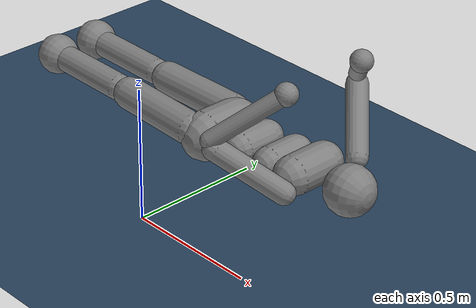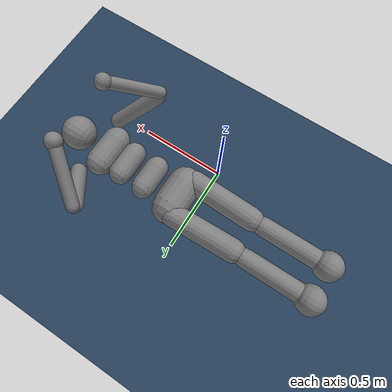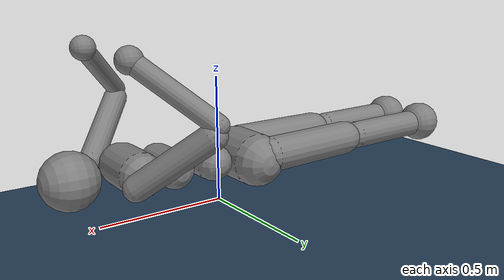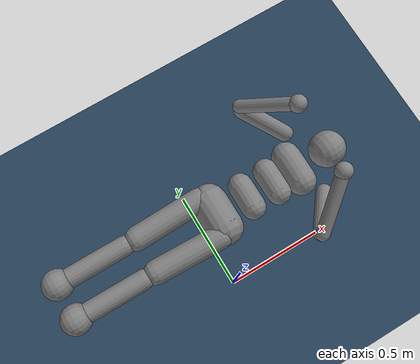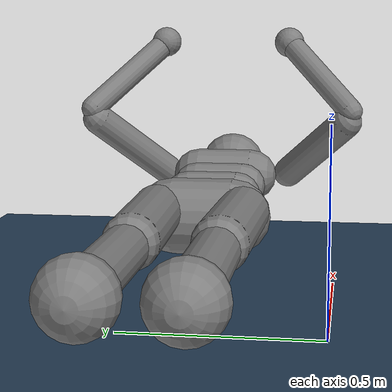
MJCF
<!--Link  MuJoCo modeling: http://www.mujoco.org/book/modeling.html-->

<mujoco model="ur5gripper">
    <compiler angle="radian"
              inertiafromgeom="true"
              texturedir="textures/"
              meshdir="mesh/visual/"/>
    <option timestep="1e-2"
            iterations="100"
            tolerance="1e-10"
            impratio="20"/>
    <option solver="Newton"/>
    <size njmax="600" nconmax="150" nstack="300000"/>
    <option gravity="0 0 0"/>
    <option cone="elliptic"/>
    <option noslip_iterations="5"/>

    <default>
        <site rgba="0.8 0.6 0.7 0.3" type="ellipsoid" group="3"/>
        <geom contype='1' conaffinity='1' condim='4'  margin="1e-3" solref=".01 1" solimp=".99 .99 .01" />
        <joint armature="0.01" damping=".1"/>
        <default class="UR5">
            <joint damping='65'/>
        </default>
        <default class="UR5e">
            <joint damping='45'/>
        </default>
        <default class="GRIPPER">
            <joint damping='5'/>
        </default>
    </default>

    <visual>
        <map fogstart="3" fogend="5" znear="0.05"/>
        <quality shadowsize="2048"/>
        <scale framelength="0.1"
               framewidth="0.005"
               contactwidth="0.1"
               contactheight="0.005"
               forcewidth="0.01"
               />
    </visual>

    <asset>

        <mesh file="base.stl" name="base" />
        <mesh file="shoulder.stl" name="shoulder" />
        <mesh file="upperarm.stl" name="upperarm" />
        <mesh file="forearm.stl" name="forearm" />
        <mesh file="wrist1.stl" name="wrist1" />
        <mesh file="wrist2.stl" name="wrist2" />
        <mesh file="wrist3.stl" name="wrist3" />
        <mesh file="palm.STL" name="gripperpalm" />
        <mesh file="link_0.STL" name="link_0" />
        <mesh file="link_1.STL" name="link_1" />
        <mesh file="link_2.STL" name="link_2" />
        <mesh file="link_3.STL" name="link_3" />
        <mesh file="kinova_robotiq_coupler.stl" />
        <mesh file="robotiq_85_base_link.stl" />
        <mesh file="robotiq_85_finger_link.stl" />
        <mesh file="robotiq_85_finger_tip_link.stl" />
        <mesh file="robotiq_85_inner_knuckle_link.stl" />
        <mesh file="robotiq_85_knuckle_link.stl" />

        <mesh file="wrist3_visual.stl" name="wrist3_visual" />
        <mesh file="robotiq_gripper_coupling.stl" name="robotiq_gripper_coupling" scale="0.001 0.001 0.001" />
        <mesh file="gripper_base_visual.stl" name="gripper_base_visual" scale="0.001 0.001 0.001" />
        <mesh file="robotiq_arg2f_85_base_link.stl" name="robotiq_arg2f_85_base_link" />
        <mesh file="outer_knuckle_visual.stl" name="outer_knuckle_visual" scale="0.001 0.001 0.001" />
        <mesh file="outer_finger_visual.stl" name="outer_finger_visual" scale="0.001 0.001 0.001" />
        <mesh file="inner_finger_visual.stl" name="inner_finger_visual" scale="0.001 0.001 0.001" />
        <mesh file="inner_knuckle_visual.stl" name="inner_knuckle_visual" scale="0.001 0.001 0.001" />

        <texture builtin="flat" height="32" name="ur5_tex" rgb1="0.45 0.45 0.45" type="2d" width="32" />
        <texture builtin="flat" height="32" name="gripper_tex" rgb1="0.45 0.45 0.45" rgb2="0 0 0" type="2d" width="32" />
        <texture builtin="flat" height="32" name="bench_tex" rgb1="0.7 0.7 0.7" type="2d" width="32" />
        <texture builtin="gradient" height="100" name="sky_tex" rgb1="1 1 1" rgb2="0.3 0.3 0.8" type="skybox" width="100" />
        <texture builtin="flat" height="1278" mark="cross" markrgb="1 1 1" name="texgeom" random="0.01" rgb1="0.8 0.6 0.4" rgb2="0.8 0.6 0.4" type="cube" width="127" />
        <texture builtin="checker" height="100" name="floor_tex" rgb1=".2 .3 .4" rgb2=".1 .2 .3" type="2d" width="100" />
        <texture file="wood2.png" name="wood" type="cube" />
        <texture file="metal2.png" name="metal" type="cube" />

        <material name="ur5_mat" reflectance="0.3" shininess="0.9" specular="0.75" texture="ur5_tex" />
        <material name="gripper_mat" reflectance="0.4" shininess="0.9" specular="0.75" texture="gripper_tex" />
        <material name="floor_mat" reflectance="0.5" shininess="0.8" specular="0.7" texrepeat="10 10" texture="floor_tex" />
        <material name="geom" texture="texgeom" texuniform="true" />
        <material name="bench_mat" reflectance="0.2" shininess="0.1" specular="0.5" texture="metal" />
        <material name="tablecube" rgba=".8 .8 .8 1" texture="wood" />

        <material emission="0.1" name="GriMat" reflectance="0" rgba="0.1 0.1 0.1 1" shininess="0.5" specular="0.9" />
    </asset>

    <worldbody>

        <geom material="floor_mat" name="floor" pos="0 0 0" size="2.5 2.5 0.1" type="plane" />

        <body name="torso" pos="0.5 0.3 0.3" euler="-1.5708 1.5708 -1.5708">
            <camera name="track" mode="trackcom" pos="0 -4 0" xyaxes="1 0 0 0 0 1"/>
            <geom fromto="0 -.07 0 0 .07 0" name="torso1" size="0.07" type="capsule"/>
            <geom name="head" pos="0 0 .19" size=".09" type="sphere" user="258"/>
            <geom fromto="-.01 -.06 -.12 -.01 .06 -.12" name="uwaist" size="0.06" type="capsule"/>
            <body name="lwaist" pos="-.01 0 -0.260" quat="1.000 0 -0.002 0">
                <geom fromto="0 -.06 0 0 .06 0" name="lwaist" size="0.06" type="capsule"/>
                <joint armature="0.02" axis="0 0 1" damping="5" name="abdomen_z" pos="0 0 0.065" range="-45 45" stiffness="20" type="hinge"/>
                <joint armature="0.02" axis="0 1 0" damping="5" name="abdomen_y" pos="0 0 0.065" range="-75 30" stiffness="10" type="hinge"/>
                <body name="pelvis" pos="0 0 -0.165" quat="1.000 0 -0.002 0">
                    <joint armature="0.02" axis="1 0 0" damping="5" name="abdomen_x" pos="0 0 0.1" range="-35 35" stiffness="10" type="hinge"/>
                    <geom fromto="-.02 -.07 0 -.02 .07 0" name="butt" size="0.09" type="capsule"/>
                    <body name="right_thigh" pos="0 -0.1 -0.04">
                        <joint armature="0.01" axis="1 0 0" damping="5" name="right_hip_x" pos="0 0 0" range="-25 5" stiffness="10" type="hinge"/>
                        <joint armature="0.01" axis="0 0 1" damping="5" name="right_hip_z" pos="0 0 0" range="-60 35" stiffness="10" type="hinge"/>
                        <joint armature="0.0080" axis="0 1 0" damping="5" name="right_hip_y" pos="0 0 0" range="-110 20" stiffness="20" type="hinge"/>
                        <geom fromto="0 0 0 0 0.01 -.34" name="right_thigh1" size="0.06" type="capsule"/>
                        <body name="right_shin" pos="0 0.01 -0.403">
                            <joint armature="0.0060" axis="0 -1 0" name="right_knee" pos="0 0 .02" range="-160 -2" type="hinge"/>
                            <geom fromto="0 0 0 0 0 -.3" name="right_shin1" size="0.049" type="capsule"/>
                            <body name="right_foot" pos="0 0 -0.45">
                                <geom name="right_foot" pos="0 0 0.1" size="0.075" type="sphere" user="0"/>
                            </body>
                        </body>
                    </body>
                    <body name="left_thigh" pos="0 0.1 -0.04">
                        <joint armature="0.01" axis="-1 0 0" damping="5" name="left_hip_x" pos="0 0 0" range="-25 5" stiffness="10" type="hinge"/>
                        <joint armature="0.01" axis="0 0 -1" damping="5" name="left_hip_z" pos="0 0 0" range="-60 35" stiffness="10" type="hinge"/>
                        <joint armature="0.01" axis="0 1 0" damping="5" name="left_hip_y" pos="0 0 0" range="-110 20" stiffness="20" type="hinge"/>
                        <geom fromto="0 0 0 0 -0.01 -.34" name="left_thigh1" size="0.06" type="capsule"/>
                        <body name="left_shin" pos="0 -0.01 -0.403">
                            <joint armature="0.0060" axis="0 -1 0" name="left_knee" pos="0 0 .02" range="-160 -2" stiffness="1" type="hinge"/>
                            <geom fromto="0 0 0 0 0 -.3" name="left_shin1" size="0.049" type="capsule"/>
                            <body name="left_foot" pos="0 0 -0.45">
                                <geom name="left_foot" type="sphere" size="0.075" pos="0 0 0.1" user="0" />
                            </body>
                        </body>
                    </body>
                </body>
            </body>
            <body name="right_upper_arm" pos="0 -0.17 0.06">
                <joint armature="0.0068" axis="2 1 1" name="right_shoulder1" pos="0 0 0" range="-85 60" stiffness="1" type="hinge"/>
                <joint armature="0.0051" axis="0 -1 1" name="right_shoulder2" pos="0 0 0" range="-85 60" stiffness="1" type="hinge"/>
                <geom fromto="0 0 0 .16 -.16 -.16" name="right_uarm1" size="0.04 0.16" type="capsule"/>
                <body name="right_lower_arm" pos=".18 -.18 -.18">
                    <!--joint armature="0.0028" axis="0 -1 1" name="right_elbow" pos="0 0 0" range="-90 50" stiffness="0" type="hinge"/-->
                    <joint armature="0.0028" axis="0 -1 1" name="right_elbow" pos="0 0 0" range="-90 20" stiffness="0" type="hinge"/>
                    <geom fromto="0.01 0.01 0.01 .17 .17 .17" name="right_larm" size="0.031" type="capsule"/>
                    <geom name="right_hand" pos=".18 .18 .18" size="0.04" type="sphere"/>
                    <camera pos="0 0 0"/>
                </body>
            </body>
            <body name="left_upper_arm" pos="0 0.17 0.06">
                <joint armature="0.0068" axis="2 -1 1" name="left_shoulder1" pos="0 0 0" range="-60 85" stiffness="1" type="hinge"/>
                <joint armature="0.0051" axis="0 1 1" name="left_shoulder2" pos="0 0 0" range="-60 85" stiffness="1" type="hinge"/>
                <geom fromto="0 0 0 .16 .16 -.16" name="left_uarm1" size="0.04 0.16" type="capsule"/>
                <body name="left_lower_arm" pos=".18 .18 -.18">
                    <!--joint armature="0.0028" axis="0 -1 -1" name="left_elbow" pos="0 0 0" range="-90 50" stiffness="0" type="hinge"/-->
                    <joint armature="0.0028" axis="0 -1 -1" name="left_elbow" pos="0 0 0" range="-90 20" stiffness="0" type="hinge"/>
                    <geom fromto="0.01 -0.01 0.01 .17 -.17 .17" name="left_larm" size="0.031" type="capsule"/>
                    <geom name="left_hand" pos=".18 -.18 .18" size="0.04" type="sphere"/>
                </body>
            </body>
        </body>

        <camera mode="fixed" name="eye_in_hand" pos="0.15 0.0 0.0" quat="0 0.707108 0.707108 0" fovy="45"/>
        <camera euler="-1.5708 0 0" mode="fixed" name="frontview" pos="0.81725 1.34 0.84" />
    </worldbody>

    <tendon>
        <fixed name="left_hipknee">
            <joint coef="-1" joint="left_hip_y"/>
            <joint coef="1" joint="left_knee"/>
        </fixed>
        <fixed name="right_hipknee">
            <joint coef="-1" joint="right_hip_y"/>
            <joint coef="1" joint="right_knee"/>
        </fixed>
    </tendon>

    <actuator>
        <motor gear="100" joint="abdomen_y" name="abdomen_y"/>
        <motor gear="100" joint="abdomen_z" name="abdomen_z"/>
        <motor gear="100" joint="abdomen_x" name="abdomen_x"/>
        <motor gear="100" joint="right_hip_x" name="right_hip_x"/>
        <motor gear="100" joint="right_hip_z" name="right_hip_z"/>
        <motor gear="300" joint="right_hip_y" name="right_hip_y"/>
        <motor gear="200" joint="right_knee" name="right_knee"/>
        <motor gear="100" joint="left_hip_x" name="left_hip_x"/>
        <motor gear="100" joint="left_hip_z" name="left_hip_z"/>
        <motor gear="300" joint="left_hip_y" name="left_hip_y"/>
        <motor gear="200" joint="left_knee" name="left_knee"/>
        <motor gear="25" joint="right_shoulder1" name="right_shoulder1"/>
        <motor gear="25" joint="right_shoulder2" name="right_shoulder2"/>
        <motor gear="25" joint="right_elbow" name="right_elbow"/>
        <motor gear="25" joint="left_shoulder1" name="left_shoulder1"/>
        <motor gear="25" joint="left_shoulder2" name="left_shoulder2"/>
        <motor gear="25" joint="left_elbow" name="left_elbow"/>
    </actuator>

</mujoco>
